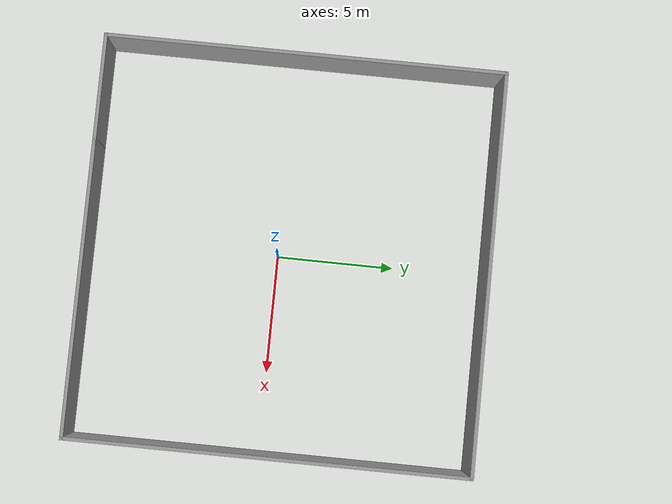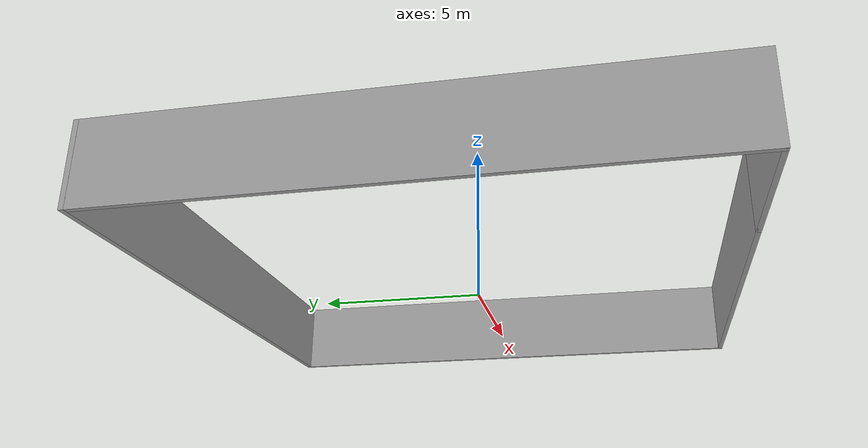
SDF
<?xml version='1.0'?>
<sdf version='1.6'>
  <model name='Untitled'>
    <pose frame=''>-0.017154 0.373463 0 0 -0 0</pose>
    <link name='Wall_2'>
      <collision name='Wall_2_Collision'>
        <geometry>
          <box>
            <size>12.5 0.15 2.5</size>
          </box>
        </geometry>
        <pose frame=''>0 0 1.25 0 -0 0</pose>
      </collision>
      <visual name='Wall_2_Visual'>
        <pose frame=''>0 0 1.25 0 -0 0</pose>
        <geometry>
          <box>
            <size>12.5 0.15 2.5</size>
          </box>
        </geometry>
        <material>
          <script>
            <uri>file://media/materials/scripts/gazebo.material</uri>
            <name>Gazebo/Grey</name>
          </script>
          <ambient>1 1 1 1</ambient>
        </material>
        <meta>
          <layer>0</layer>
        </meta>
      </visual>
      <pose frame=''>2.25 -8.425 0 0 -0 0</pose>
    </link>
    <link name='Wall_3'>
      <collision name='Wall_3_Collision'>
        <geometry>
          <box>
            <size>17 0.15 2.5</size>
          </box>
        </geometry>
        <pose frame=''>0 0 1.25 0 -0 0</pose>
      </collision>
      <visual name='Wall_3_Visual'>
        <pose frame=''>0 0 1.25 0 -0 0</pose>
        <geometry>
          <box>
            <size>17 0.15 2.5</size>
          </box>
        </geometry>
        <material>
          <script>
            <uri>file://media/materials/scripts/gazebo.material</uri>
            <name>Gazebo/Grey</name>
          </script>
          <ambient>1 1 1 1</ambient>
        </material>
        <meta>
          <layer>0</layer>
        </meta>
      </visual>
      <pose frame=''>8.425 -0 0 0 -0 1.5708</pose>
    </link>
    <link name='Wall_4'>
      <collision name='Wall_4_Collision'>
        <geometry>
          <box>
            <size>17 0.15 2.5</size>
          </box>
        </geometry>
        <pose frame=''>0 0 1.25 0 -0 0</pose>
      </collision>
      <visual name='Wall_4_Visual'>
        <pose frame=''>0 0 1.25 0 -0 0</pose>
        <geometry>
          <box>
            <size>17 0.15 2.5</size>
          </box>
        </geometry>
        <material>
          <script>
            <uri>file://media/materials/scripts/gazebo.material</uri>
            <name>Gazebo/Grey</name>
          </script>
          <ambient>1 1 1 1</ambient>
        </material>
        <meta>
          <layer>0</layer>
        </meta>
      </visual>
      <pose frame=''>-0 8.425 0 0 -0 3.14159</pose>
    </link>
    <link name='Wall_5'>
      <collision name='Wall_5_Collision'>
        <geometry>
          <box>
            <size>17 0.15 2.5</size>
          </box>
        </geometry>
        <pose frame=''>0 0 1.25 0 -0 0</pose>
      </collision>
      <visual name='Wall_5_Visual'>
        <pose frame=''>0 0 1.25 0 -0 0</pose>
        <geometry>
          <box>
            <size>17 0.15 2.5</size>
          </box>
        </geometry>
        <material>
          <script>
            <uri>file://media/materials/scripts/gazebo.material</uri>
            <name>Gazebo/Grey</name>
          </script>
          <ambient>1 1 1 1</ambient>
        </material>
        <meta>
          <layer>0</layer>
        </meta>
      </visual>
      <pose frame=''>-8.425 -0 0 0 -0 -1.5708</pose>
    </link>
    <link name='Wall_6'>
      <collision name='Wall_6_Collision'>
        <geometry>
          <box>
            <size>4.75 0.15 2.5</size>
          </box>
        </geometry>
        <pose frame=''>0 0 1.25 0 -0 0</pose>
      </collision>
      <visual name='Wall_6_Visual'>
        <pose frame=''>0 0 1.25 0 -0 0</pose>
        <geometry>
          <box>
            <size>4.75 0.15 2.5</size>
          </box>
        </geometry>
        <material>
          <script>
            <uri>file://media/materials/scripts/gazebo.material</uri>
            <name>Gazebo/Grey</name>
          </script>
          <ambient>1 1 1 1</ambient>
        </material>
        <meta>
          <layer>0</layer>
        </meta>
      </visual>
      <pose frame=''>-6.125 -8.425 0 0 -0 0</pose>
    </link>
    <static>1</static>
  </model>
</sdf>
